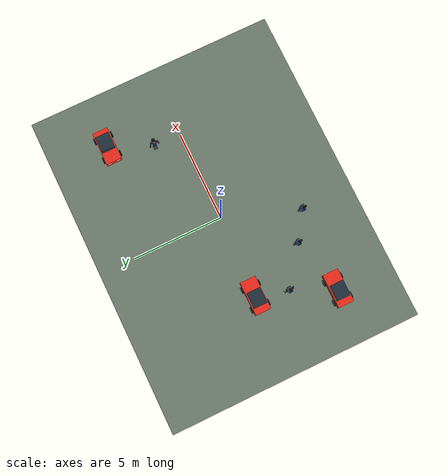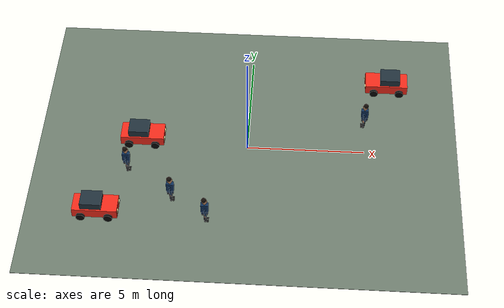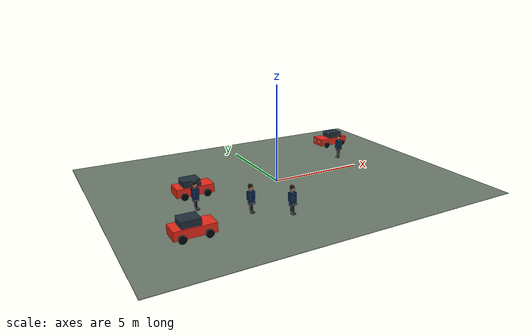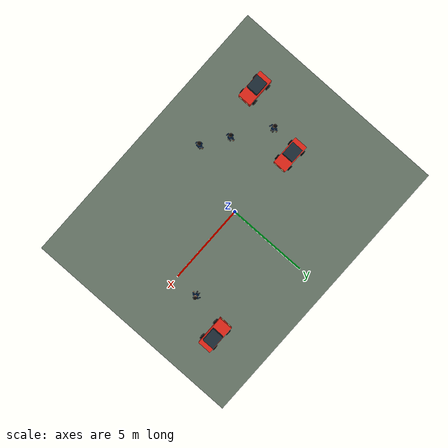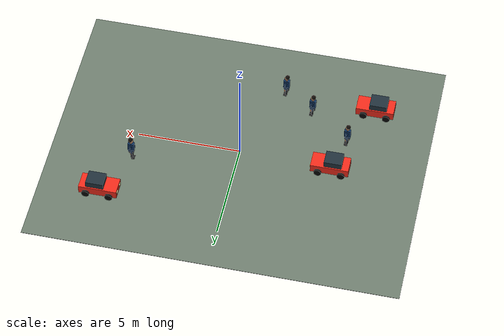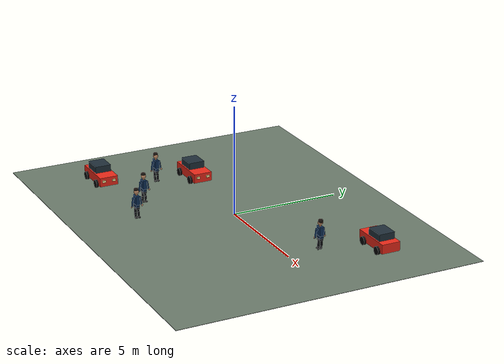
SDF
<?xml version="1.0" ?>
<sdf version="1.10">
  <world name="multi_people">
    <physics name="fast_visual_physics" type="ignored"><max_step_size>0.01</max_step_size><real_time_factor>1.0</real_time_factor></physics>
    <scene><ambient>0.65 0.65 0.65 1</ambient><background>0.72 0.80 0.90 1</background><shadows>true</shadows></scene>
    <light name="sun" type="directional"><pose>0 0 12 0.4 0.2 0</pose><diffuse>0.9 0.86 0.76 1</diffuse><specular>0.2 0.2 0.2 1</specular><direction>-0.4 0.3 -0.8</direction></light>
    <model name="visual_ground"><static>true</static><link name="link"><visual name="ground_visual"><geometry><box><size>18 14 0.02</size></box></geometry><pose>0 0 -0.01 0 0 0</pose><material><diffuse>0.42 0.48 0.42 1</diffuse></material></visual></link></model>
    <include><uri>model://textured_person</uri><name>person_a</name><pose>-5 -1.5 0.05 0 0 0</pose></include>
    <include><uri>model://textured_person</uri><name>person_b</name><pose>5 1.5 0.05 0 0 3.1416</pose></include>
    <include><uri>model://textured_person</uri><name>person_c</name><pose>-3 -3 0.05 0 0 0</pose></include>
    <include><uri>model://textured_person</uri><name>person_d</name><pose>-1.5 -4 0.05 0 0 0</pose></include>
    <include><uri>model://textured_vehicle</uri><name>vehicle_a</name><pose>-6 -3.8 0.05 0 0 0</pose></include>
    <include><uri>model://textured_vehicle</uri><name>vehicle_b</name><pose>6 3.8 0.05 0 0 3.1416</pose></include>
    <include><uri>model://textured_vehicle</uri><name>vehicle_c</name><pose>-4.5 0.2 0.05 0 0 0</pose></include>
  </world>
</sdf>

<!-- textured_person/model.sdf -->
<sdf version="1.10">
  <model name="textured_person">
    <static>false</static>
    <self_collide>false</self_collide>
    <link name="visual_link">
      <gravity>false</gravity>
      <kinematic>true</kinematic>
      <!-- A lightweight collision envelope makes the moving model visible to
           Gazebo ray sensors without adding articulated-body simulation. -->
      <collision name="lidar_collision">
        <pose>0 0 0.65 0 0 0</pose>
        <geometry><box><size>0.34 0.30 1.30</size></box></geometry>
      </collision>
      <visual name="head"><pose>0 0 1.204 0 0 0</pose><geometry><sphere><radius>0.112</radius></sphere></geometry><material><diffuse>0.72 0.52 0.38 1</diffuse></material></visual>
      <visual name="hair"><pose>-0.025 0 1.288 0 0 0</pose><geometry><sphere><radius>0.108</radius></sphere></geometry><material><diffuse>0.08 0.055 0.04 1</diffuse></material></visual>
      <visual name="neck"><pose>0 0 1.043 0 0 0</pose><geometry><cylinder><radius>0.046</radius><length>0.13</length></cylinder></geometry><material><diffuse>0.68 0.48 0.34 1</diffuse></material></visual>
      <visual name="chest"><pose>0 0 0.84 0 0 0</pose><geometry><box><size>0.31 0.18 0.40</size></box></geometry><material><diffuse>0.05 0.18 0.34 1</diffuse><pbr><metal><albedo_map>materials/textures/person_albedo.png</albedo_map><roughness>0.8</roughness></metal></pbr></material></visual>
      <visual name="abdomen_fill"><pose>0 0 0.63 0 0 0</pose><geometry><box><size>0.27 0.17 0.25</size></box></geometry><material><diffuse>0.045 0.14 0.26 1</diffuse></material></visual>
      <visual name="pelvis"><pose>0 0 0.49 0 0 0</pose><geometry><box><size>0.25 0.16 0.13</size></box></geometry><material><diffuse>0.05 0.055 0.075 1</diffuse></material></visual>
      <visual name="left_shoulder"><pose>0 0.16 0.91 0 0 0</pose><geometry><sphere><radius>0.055</radius></sphere></geometry><material><diffuse>0.04 0.16 0.30 1</diffuse></material></visual>
      <visual name="right_shoulder"><pose>0 -0.16 0.91 0 0 0</pose><geometry><sphere><radius>0.055</radius></sphere></geometry><material><diffuse>0.04 0.16 0.30 1</diffuse></material></visual>
      <visual name="left_arm"><pose>0.02 0.20 0.76 0.22 0.20 0</pose><geometry><cylinder><radius>0.034</radius><length>0.42</length></cylinder></geometry><material><diffuse>0.04 0.16 0.30 1</diffuse></material></visual>
      <visual name="right_arm"><pose>0.02 -0.20 0.76 -0.22 -0.20 0</pose><geometry><cylinder><radius>0.034</radius><length>0.42</length></cylinder></geometry><material><diffuse>0.04 0.16 0.30 1</diffuse></material></visual>
      <visual name="left_hand"><pose>0.045 0.25 0.55 0 0 0</pose><geometry><sphere><radius>0.040</radius></sphere></geometry><material><diffuse>0.70 0.50 0.36 1</diffuse></material></visual>
      <visual name="right_hand"><pose>0.045 -0.25 0.55 0 0 0</pose><geometry><sphere><radius>0.040</radius></sphere></geometry><material><diffuse>0.70 0.50 0.36 1</diffuse></material></visual>
      <visual name="left_upper_leg"><pose>0 0.065 0.31 0.04 0 0</pose><geometry><cylinder><radius>0.048</radius><length>0.34</length></cylinder></geometry><material><diffuse>0.035 0.04 0.055 1</diffuse></material></visual>
      <visual name="right_upper_leg"><pose>0 -0.065 0.31 -0.04 0 0</pose><geometry><cylinder><radius>0.048</radius><length>0.34</length></cylinder></geometry><material><diffuse>0.035 0.04 0.055 1</diffuse></material></visual>
      <visual name="left_lower_leg"><pose>0.02 0.065 0.13 -0.04 0 0</pose><geometry><cylinder><radius>0.043</radius><length>0.30</length></cylinder></geometry><material><diffuse>0.035 0.04 0.055 1</diffuse></material></visual>
      <visual name="right_lower_leg"><pose>0.02 -0.065 0.13 0.04 0 0</pose><geometry><cylinder><radius>0.043</radius><length>0.30</length></cylinder></geometry><material><diffuse>0.035 0.04 0.055 1</diffuse></material></visual>
      <visual name="left_shoe"><pose>0.065 0.065 0.035 0 0 0</pose><geometry><box><size>0.17 0.08 0.055</size></box></geometry><material><diffuse>0.015 0.015 0.014 1</diffuse></material></visual>
      <visual name="right_shoe"><pose>0.065 -0.065 0.035 0 0 0</pose><geometry><box><size>0.17 0.08 0.055</size></box></geometry><material><diffuse>0.015 0.015 0.014 1</diffuse></material></visual>
    </link>
  </model>
</sdf>

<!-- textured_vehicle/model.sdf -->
<sdf version="1.10">
  <model name="textured_vehicle">
    <static>false</static>
    <self_collide>false</self_collide>
    <link name="visual_link">
      <gravity>false</gravity>
      <kinematic>true</kinematic>
      <collision name="lidar_collision">
        <pose>-0.02 0 0.45 0 0 0</pose>
        <geometry><box><size>1.90 0.92 0.90</size></box></geometry>
      </collision>
      <visual name="body">
        <pose>0 0 0.36 0 0 0</pose>
        <geometry><box><size>1.85 0.86 0.42</size></box></geometry>
        <material>
          <diffuse>0.92 0.16 0.10 1</diffuse>
          <pbr><metal><albedo_map>materials/textures/vehicle_body.png</albedo_map><roughness>0.55</roughness></metal></pbr>
        </material>
      </visual>
      <visual name="cabin">
        <pose>-0.15 0 0.70 0 0 0</pose>
        <geometry><box><size>0.86 0.74 0.36</size></box></geometry>
        <material>
          <diffuse>0.12 0.18 0.22 1</diffuse>
          <pbr><metal><albedo_map>materials/textures/vehicle_window.png</albedo_map><roughness>0.25</roughness></metal></pbr>
        </material>
      </visual>
      <visual name="front_light_left"><pose>0.94 0.24 0.39 0 0 0</pose><geometry><box><size>0.04 0.16 0.10</size></box></geometry><material><diffuse>1.0 0.92 0.62 1</diffuse></material></visual>
      <visual name="front_light_right"><pose>0.94 -0.24 0.39 0 0 0</pose><geometry><box><size>0.04 0.16 0.10</size></box></geometry><material><diffuse>1.0 0.92 0.62 1</diffuse></material></visual>
      <visual name="wheel_fl"><pose>0.55 0.47 0.20 1.570796 0 0</pose><geometry><cylinder><radius>0.18</radius><length>0.12</length></cylinder></geometry><material><diffuse>0.02 0.02 0.02 1</diffuse></material></visual>
      <visual name="wheel_fr"><pose>0.55 -0.47 0.20 1.570796 0 0</pose><geometry><cylinder><radius>0.18</radius><length>0.12</length></cylinder></geometry><material><diffuse>0.02 0.02 0.02 1</diffuse></material></visual>
      <visual name="wheel_rl"><pose>-0.58 0.47 0.20 1.570796 0 0</pose><geometry><cylinder><radius>0.18</radius><length>0.12</length></cylinder></geometry><material><diffuse>0.02 0.02 0.02 1</diffuse></material></visual>
      <visual name="wheel_rr"><pose>-0.58 -0.47 0.20 1.570796 0 0</pose><geometry><cylinder><radius>0.18</radius><length>0.12</length></cylinder></geometry><material><diffuse>0.02 0.02 0.02 1</diffuse></material></visual>
    </link>
  </model>
</sdf>
